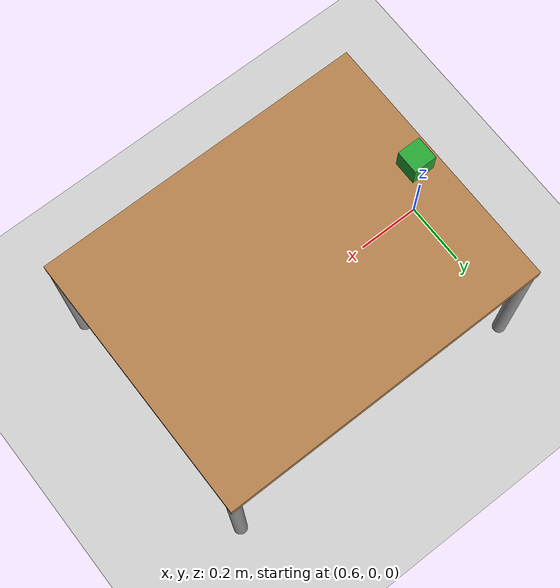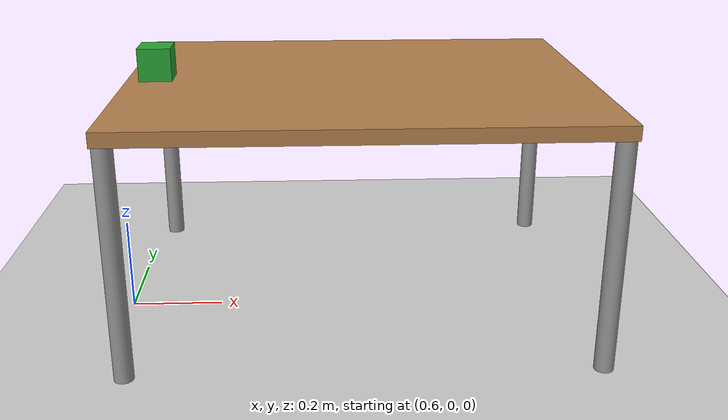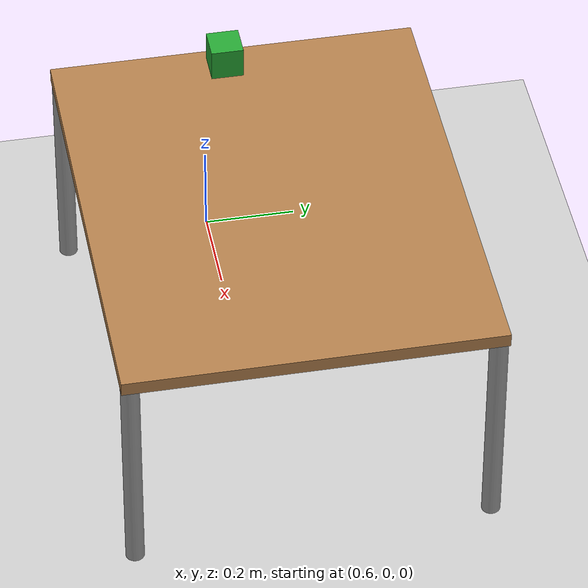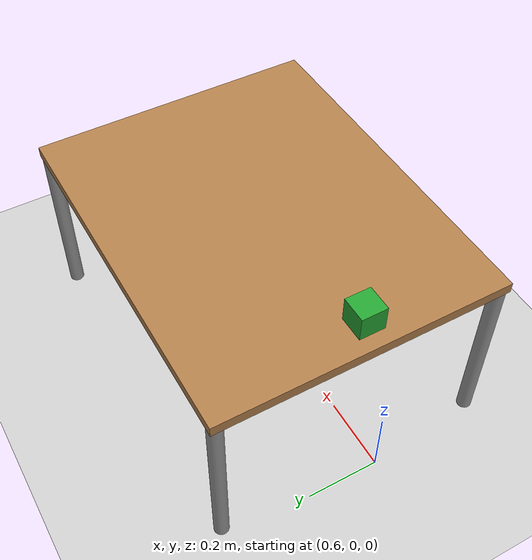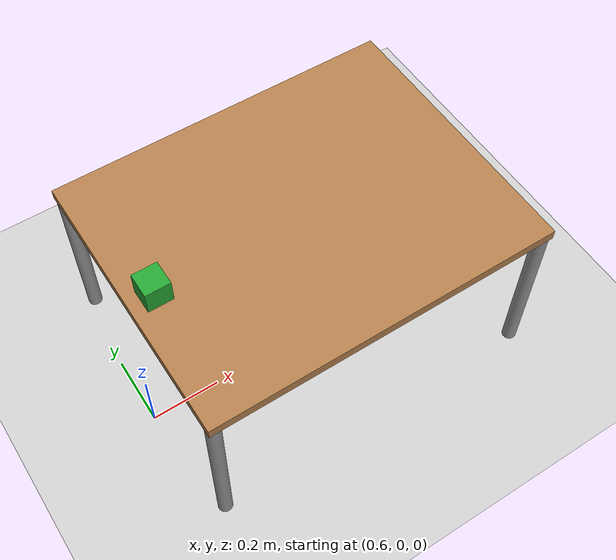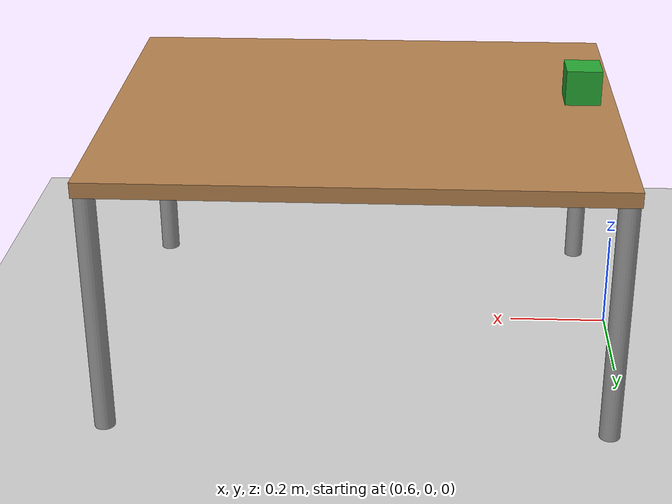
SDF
<sdf version="1.4">
 <world name="default">
  <model name="ground_plane">
   <static>1</static>
   <link name="link">
    <collision name="collision">
     <geometry><plane><normal>0 0 1</normal><size>100 100</size></plane></geometry>
     <surface><friction><ode><mu>100</mu><mu2>50</mu2></ode></friction></surface>
    </collision>
    <visual name="visual">
     <cast_shadows>0</cast_shadows>
     <geometry><plane><normal>0 0 1</normal><size>100 100</size></plane></geometry>
     <material>
      <script><uri>file://media/materials/scripts/gazebo.material</uri><name>Gazebo/Grey</name></script>
     </material>
    </visual>
    <velocity_decay><linear>0</linear><angular>0</angular></velocity_decay>
   </link>
  </model>
  <model name="table">
   <static>1</static>
   <link name="link">
    <collision name="surface">
     <pose>0 0 0.5 0 -0 0</pose>
     <geometry><box><size>1 0.8 0.03</size></box></geometry>
    </collision>
    <visual name="visual1">
     <pose>0 0 0.5 0 -0 0</pose>
     <geometry><box><size>1 0.8 0.03</size></box></geometry>
     <material>
      <script><uri>file://media/materials/scripts/gazebo.material</uri><name>Gazebo/Wood</name></script>
     </material>
    </visual>
    <collision name="front_left_leg">
     <pose>0.48 0.38 0.25 0 -0 0</pose>
     <geometry><cylinder><radius>0.02</radius><length>0.5</length></cylinder></geometry>
    </collision>
    <visual name="front_left_leg">
     <pose>0.48 0.38 0.25 0 -0 0</pose>
     <geometry><cylinder><radius>0.02</radius><length>0.5</length></cylinder></geometry>
     <material>
      <script><uri>file://media/materials/scripts/gazebo.material</uri><name>Gazebo/Grey</name></script>
     </material>
    </visual>
    <collision name="front_right_leg">
     <pose>0.48 -0.38 0.25 0 -0 0</pose>
     <geometry><cylinder><radius>0.02</radius><length>0.5</length></cylinder></geometry>
    </collision>
    <visual name="front_right_leg">
     <pose>0.48 -0.38 0.25 0 -0 0</pose>
     <geometry><cylinder><radius>0.02</radius><length>0.5</length></cylinder></geometry>
     <material>
      <script><uri>file://media/materials/scripts/gazebo.material</uri><name>Gazebo/Grey</name></script>
     </material>
    </visual>
    <collision name="back_right_leg">
     <pose>-0.48 -0.38 0.25 0 -0 0</pose>
     <geometry><cylinder><radius>0.02</radius><length>0.5</length></cylinder></geometry>
    </collision>
    <visual name="back_right_leg">
     <pose>-0.48 -0.38 0.25 0 -0 0</pose>
     <geometry><cylinder><radius>0.02</radius><length>0.5</length></cylinder></geometry>
     <material>
      <script><uri>file://media/materials/scripts/gazebo.material</uri><name>Gazebo/Grey</name></script>
     </material>
    </visual>
    <collision name="back_left_leg">
     <pose>-0.48 0.38 0.25 0 -0 0</pose>
     <geometry><cylinder><radius>0.02</radius><length>0.5</length></cylinder></geometry>
    </collision>
    <visual name="back_left_leg">
     <pose>-0.48 0.38 0.25 0 -0 0</pose>
     <geometry><cylinder><radius>0.02</radius><length>0.5</length></cylinder></geometry>
     <material>
      <script><uri>file://media/materials/scripts/gazebo.material</uri><name>Gazebo/Grey</name></script>
     </material>
    </visual>
    <velocity_decay><linear>0</linear><angular>0</angular></velocity_decay>
   </link>
   <pose>1.116665 0.058298 0 0 -0 0</pose>
  </model>
  <model name="table">
   <pose>1.09785 -0.352251 -0.23908 0 -0 1.4999</pose>
   <scale>1 1 1</scale>
   <link name="link">
    <pose>1.09785 -0.352251 -0.23908 0 -0 1.4999</pose>
    <velocity>0 0 0 0 -0 0</velocity>
    <acceleration>0 0 0 0 -0 0</acceleration>
    <wrench>0 0 0 0 -0 0</wrench>
   </link>
  </model>
  <model name="green_cube_3">
   <link name="link">
    <inertial>
     <mass>0.25</mass>
     <inertia>
      <ixx>4.167e-05</ixx>
      <ixy>0</ixy>
      <ixz>0</ixz>
      <iyy>4.167e-05</iyy>
      <iyz>0</iyz>
      <izz>4.167e-05</izz>
     </inertia>
    </inertial>
    <velocity_decay><linear>0</linear><angular>0</angular></velocity_decay>
    <pose>0.686 0.032 0.558 0 0 0</pose>
    <visual name="visual">
     <geometry><box><size>0.07 0.07 0.07</size></box></geometry>
     <material>
      <script><uri>file://media/materials/scripts/gazebo.material</uri><name>Gazebo/Green</name></script>
      <shader type="pixel"><normal_map>__default__</normal_map></shader>
     </material>
    </visual>
    <collision name="collision">
     <geometry><box><size>0.07 0.07 0.07</size></box></geometry>
     <surface>
      <friction>
       <ode><mu>0.7</mu><mu2>0.7</mu2><fdir1>0 0 0</fdir1><slip1>0</slip1><slip2>0</slip2></ode>
       <torsional>
        <coefficient>1</coefficient>
        <patch_radius>0</patch_radius>
        <surface_radius>0</surface_radius>
        <use_patch_radius>1</use_patch_radius>
        <ode><slip>0</slip></ode>
       </torsional>
      </friction>
      <bounce><restitution_coefficient>0</restitution_coefficient><threshold>1e+06</threshold></bounce>
      <contact>
       <collide_without_contact>0</collide_without_contact>
       <collide_without_contact_bitmask>1</collide_without_contact_bitmask>
       <collide_bitmask>1</collide_bitmask>
       <ode>
        <soft_cfm>0</soft_cfm>
        <soft_erp>0.2</soft_erp>
        <kp>1e+06</kp>
        <kd>100</kd>
        <max_vel>1</max_vel>
        <min_depth>0.0025</min_depth>
       </ode>
       <bullet>
        <split_impulse>1</split_impulse>
        <split_impulse_penetration_threshold>-0.01</split_impulse_penetration_threshold>
        <soft_cfm>0</soft_cfm>
        <soft_erp>0.2</soft_erp>
        <kp>1e+06</kp>
        <kd>100</kd>
       </bullet>
      </contact>
     </surface>
    </collision>
   </link>
   <static>0</static>
   <allow_auto_disable>0</allow_auto_disable>
  </model>
 </world>
</sdf>
